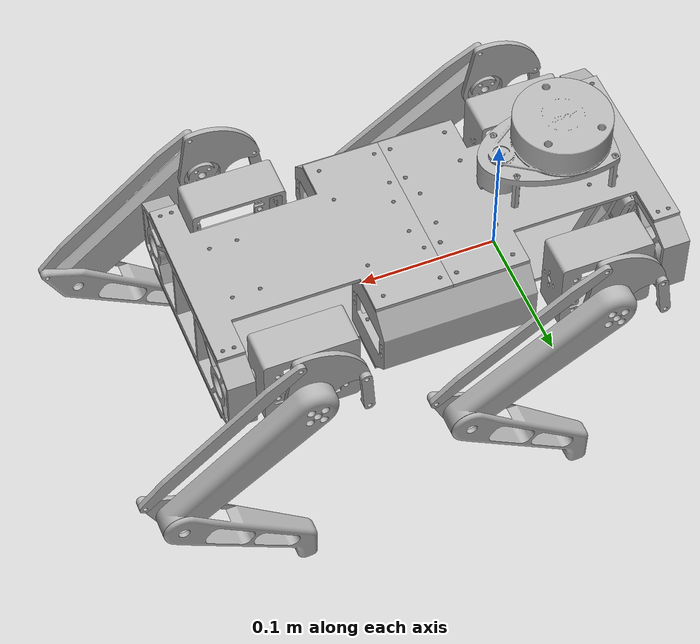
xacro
<?xml version="1.0" ?>
<robot name="Argos" xmlns:xacro="http://www.ros.org/wiki/xacro">

<xacro:include filename="$(find Argos_description)/urdf/materials.xacro" />
<xacro:include filename="$(find Argos_description)/urdf/Argos.trans" />
<xacro:include filename="$(find Argos_description)/urdf/Argos.gazebo" />
<link name="base_link">
  <inertial>
    <origin xyz="-0.022118466334973337 -0.009183143711477892 -0.01761714704800224" rpy="0 0 0"/>
    <mass value="0.41722982746680565"/>
    <inertia ixx="0.000465" iyy="0.001147" izz="0.001612" ixy="0.0" iyz="0.0" ixz="-0.0"/>
  </inertial>
  <visual>
    <origin xyz="0 0 0" rpy="0 0 0"/>
    <geometry>
      <mesh filename="package://Argos_description/meshes/base_link.stl" scale="0.001 0.001 0.001"/>
    </geometry>
    <material name="silver"/>
  </visual>
  <collision>
    <origin xyz="0 0 0" rpy="0 0 0"/>
    <geometry>
      <mesh filename="package://Argos_description/meshes/base_link.stl" scale="0.001 0.001 0.001"/>
    </geometry>
  </collision>
</link>

<link name="chassis_side_left_1">
  <inertial>
    <origin xyz="0.04749985628852587 -0.028528711386581106 0.030499852951997856" rpy="0 0 0"/>
    <mass value="0.5418487678584163"/>
    <inertia ixx="0.000472" iyy="0.001048" izz="0.000931" ixy="-0.0" iyz="0.0" ixz="0.0"/>
  </inertial>
  <visual>
    <origin xyz="-0.009817 0.040183 0.016117" rpy="0 0 0"/>
    <geometry>
      <mesh filename="package://Argos_description/meshes/chassis_side_left_1.stl" scale="0.001 0.001 0.001"/>
    </geometry>
    <material name="silver"/>
  </visual>
  <collision>
    <origin xyz="-0.009817 0.040183 0.016117" rpy="0 0 0"/>
    <geometry>
      <mesh filename="package://Argos_description/meshes/chassis_side_left_1.stl" scale="0.001 0.001 0.001"/>
    </geometry>
  </collision>
</link>

<link name="chassis_front_1">
  <inertial>
    <origin xyz="-0.004192204191852261 0.06199985628867903 0.03075956610836024" rpy="0 0 0"/>
    <mass value="0.4930747270961484"/>
    <inertia ixx="0.001806" iyy="0.000269" izz="0.00157" ixy="-0.0" iyz="0.0" ixz="-0.0"/>
  </inertial>
  <visual>
    <origin xyz="0.098183 0.071183 0.016117" rpy="0 0 0"/>
    <geometry>
      <mesh filename="package://Argos_description/meshes/chassis_front_1.stl" scale="0.001 0.001 0.001"/>
    </geometry>
    <material name="silver"/>
  </visual>
  <collision>
    <origin xyz="0.098183 0.071183 0.016117" rpy="0 0 0"/>
    <geometry>
      <mesh filename="package://Argos_description/meshes/chassis_front_1.stl" scale="0.001 0.001 0.001"/>
    </geometry>
  </collision>
</link>

<link name="chassis_cam_mount_1">
  <inertial>
    <origin xyz="0.011646354435480802 -1.437114716049126e-07 0.021129531182059128" rpy="0 0 0"/>
    <mass value="0.03474382066439181"/>
    <inertia ixx="1e-05" iyy="1.3e-05" izz="4e-06" ixy="0.0" iyz="-0.0" ixz="2e-06"/>
  </inertial>
  <visual>
    <origin xyz="0.084683 0.031683 0.016117" rpy="0 0 0"/>
    <geometry>
      <mesh filename="package://Argos_description/meshes/chassis_cam_mount_1.stl" scale="0.001 0.001 0.001"/>
    </geometry>
    <material name="silver"/>
  </visual>
  <collision>
    <origin xyz="0.084683 0.031683 0.016117" rpy="0 0 0"/>
    <geometry>
      <mesh filename="package://Argos_description/meshes/chassis_cam_mount_1.stl" scale="0.001 0.001 0.001"/>
    </geometry>
  </collision>
</link>

<link name="chassis_cam_mount_2">
  <inertial>
    <origin xyz="0.011646354435480955 -1.437114715910348e-07 0.021129531182059104" rpy="0 0 0"/>
    <mass value="0.03474382066439181"/>
    <inertia ixx="1e-05" iyy="1.3e-05" izz="4e-06" ixy="0.0" iyz="-0.0" ixz="2e-06"/>
  </inertial>
  <visual>
    <origin xyz="0.084683 -0.013317 0.016117" rpy="0 0 0"/>
    <geometry>
      <mesh filename="package://Argos_description/meshes/chassis_cam_mount_2.stl" scale="0.001 0.001 0.001"/>
    </geometry>
    <material name="silver"/>
  </visual>
  <collision>
    <origin xyz="0.084683 -0.013317 0.016117" rpy="0 0 0"/>
    <geometry>
      <mesh filename="package://Argos_description/meshes/chassis_cam_mount_2.stl" scale="0.001 0.001 0.001"/>
    </geometry>
  </collision>
</link>

<link name="chassis_bottom_1">
  <inertial>
    <origin xyz="0.07943517891202628 -1.4371146442836158e-07 -1.4704800211165492e-07" rpy="0 0 0"/>
    <mass value="0.41722982746680565"/>
    <inertia ixx="0.000465" iyy="0.001147" izz="0.001612" ixy="0.0" iyz="0.0" ixz="-0.0"/>
  </inertial>
  <visual>
    <origin xyz="-0.057317 0.009183 0.017617" rpy="0 0 0"/>
    <geometry>
      <mesh filename="package://Argos_description/meshes/chassis_bottom_1.stl" scale="0.001 0.001 0.001"/>
    </geometry>
    <material name="silver"/>
  </visual>
  <collision>
    <origin xyz="-0.057317 0.009183 0.017617" rpy="0 0 0"/>
    <geometry>
      <mesh filename="package://Argos_description/meshes/chassis_bottom_1.stl" scale="0.001 0.001 0.001"/>
    </geometry>
  </collision>
</link>

<link name="chassis_side_right__1__1">
  <inertial>
    <origin xyz="0.04749985628852315 0.028528423963627692 0.030499852951997697" rpy="0 0 0"/>
    <mass value="0.5418487678584163"/>
    <inertia ixx="0.000472" iyy="0.001048" izz="0.000931" ixy="-0.0" iyz="-0.0" ixz="-0.0"/>
  </inertial>
  <visual>
    <origin xyz="-0.009817 -0.021817 0.016117" rpy="0 0 0"/>
    <geometry>
      <mesh filename="package://Argos_description/meshes/chassis_side_right__1__1.stl" scale="0.001 0.001 0.001"/>
    </geometry>
    <material name="silver"/>
  </visual>
  <collision>
    <origin xyz="-0.009817 -0.021817 0.016117" rpy="0 0 0"/>
    <geometry>
      <mesh filename="package://Argos_description/meshes/chassis_side_right__1__1.stl" scale="0.001 0.001 0.001"/>
    </geometry>
  </collision>
</link>

<link name="camera_link_1">
  <inertial>
    <origin xyz="-0.010946509607845059 0.02109173183975526 -0.004009299264399694" rpy="0 0 0"/>
    <mass value="0.07200111279051585"/>
    <inertia ixx="4.6e-05" iyy="7e-06" izz="4.7e-05" ixy="0.0" iyz="0.0" ixz="-0.0"/>
  </inertial>
  <visual>
    <origin xyz="0.084683 0.031683 -0.022883" rpy="0 0 0"/>
    <geometry>
      <mesh filename="package://Argos_description/meshes/camera_link_1.stl" scale="0.001 0.001 0.001"/>
    </geometry>
    <material name="silver"/>
  </visual>
  <collision>
    <origin xyz="0.084683 0.031683 -0.022883" rpy="0 0 0"/>
    <geometry>
      <mesh filename="package://Argos_description/meshes/camera_link_1.stl" scale="0.001 0.001 0.001"/>
    </geometry>
  </collision>
</link>

<link name="chassis_back_1">
  <inertial>
    <origin xyz="-0.003824523493727916 -0.06200014371160491 0.030737334816992173" rpy="0 0 0"/>
    <mass value="0.5392327270961488"/>
    <inertia ixx="0.001836" iyy="0.00028" izz="0.001593" ixy="-0.0" iyz="-0.0" ixz="0.0"/>
  </inertial>
  <visual>
    <origin xyz="-0.220817 -0.052817 0.016117" rpy="0 0 0"/>
    <geometry>
      <mesh filename="package://Argos_description/meshes/chassis_back_1.stl" scale="0.001 0.001 0.001"/>
    </geometry>
    <material name="silver"/>
  </visual>
  <collision>
    <origin xyz="-0.220817 -0.052817 0.016117" rpy="0 0 0"/>
    <geometry>
      <mesh filename="package://Argos_description/meshes/chassis_back_1.stl" scale="0.001 0.001 0.001"/>
    </geometry>
  </collision>
</link>

<link name="chassis_top_back_1">
  <inertial>
    <origin xyz="-0.08406482108797664 -0.0620001437114677 0.0014998529519979278" rpy="0 0 0"/>
    <mass value="0.41722982746680565"/>
    <inertia ixx="0.000465" iyy="0.001147" izz="0.001612" ixy="0.0" iyz="0.0" ixz="-0.0"/>
  </inertial>
  <visual>
    <origin xyz="-0.220817 -0.052817 -0.044883" rpy="0 0 0"/>
    <geometry>
      <mesh filename="package://Argos_description/meshes/chassis_top_back_1.stl" scale="0.001 0.001 0.001"/>
    </geometry>
    <material name="silver"/>
  </visual>
  <collision>
    <origin xyz="-0.220817 -0.052817 -0.044883" rpy="0 0 0"/>
    <geometry>
      <mesh filename="package://Argos_description/meshes/chassis_top_back_1.stl" scale="0.001 0.001 0.001"/>
    </geometry>
  </collision>
</link>

<link name="chassis_top_front_1">
  <inertial>
    <origin xyz="0.08410298001571184 -0.061989721998729076 0.0014998529519977405" rpy="0 0 0"/>
    <mass value="0.4159347286719098"/>
    <inertia ixx="0.000464" iyy="0.001144" izz="0.001607" ixy="0.0" iyz="0.0" ixz="0.0"/>
  </inertial>
  <visual>
    <origin xyz="0.106183 -0.052817 -0.044883" rpy="0 0 0"/>
    <geometry>
      <mesh filename="package://Argos_description/meshes/chassis_top_front_1.stl" scale="0.001 0.001 0.001"/>
    </geometry>
    <material name="silver"/>
  </visual>
  <collision>
    <origin xyz="0.106183 -0.052817 -0.044883" rpy="0 0 0"/>
    <geometry>
      <mesh filename="package://Argos_description/meshes/chassis_top_front_1.stl" scale="0.001 0.001 0.001"/>
    </geometry>
  </collision>
</link>

<link name="lidar_link_1">
  <inertial>
    <origin xyz="0.033784169392077075 -0.027505085866451538 0.03503813199409616" rpy="0 0 0"/>
    <mass value="1.122500385833242"/>
    <inertia ixx="0.000458" iyy="0.000732" izz="0.000909" ixy="-3e-06" iyz="-6e-06" ixz="0.000104"/>
  </inertial>
  <visual>
    <origin xyz="0.079183 -0.018817 -0.047883" rpy="0 0 0"/>
    <geometry>
      <mesh filename="package://Argos_description/meshes/lidar_link_1.stl" scale="0.001 0.001 0.001"/>
    </geometry>
    <material name="silver"/>
  </visual>
  <collision>
    <origin xyz="0.079183 -0.018817 -0.047883" rpy="0 0 0"/>
    <geometry>
      <mesh filename="package://Argos_description/meshes/lidar_link_1.stl" scale="0.001 0.001 0.001"/>
    </geometry>
  </collision>
</link>

<link name="FL_coxa_link_1">
  <inertial>
    <origin xyz="-0.03536618985332857 -0.00686411101953549 -1.470480022573717e-07" rpy="0 0 0"/>
    <mass value="0.22169336139879325"/>
    <inertia ixx="0.000138" iyy="0.000268" izz="0.000171" ixy="1e-06" iyz="0.0" ixz="0.0"/>
  </inertial>
  <visual>
    <origin xyz="0.016983 0.073583 -0.014583" rpy="0 0 0"/>
    <geometry>
      <mesh filename="package://Argos_description/meshes/FL_coxa_link_1.stl" scale="0.001 0.001 0.001"/>
    </geometry>
    <material name="silver"/>
  </visual>
  <collision>
    <origin xyz="0.016983 0.073583 -0.014583" rpy="0 0 0"/>
    <geometry>
      <mesh filename="package://Argos_description/meshes/FL_coxa_link_1.stl" scale="0.001 0.001 0.001"/>
    </geometry>
  </collision>
</link>

<link name="FL_femur_link_1">
  <inertial>
    <origin xyz="0.04496963743627094 -0.010981700845071177 -0.029725960847840703" rpy="0 0 0"/>
    <mass value="0.48563687689626245"/>
    <inertia ixx="0.000276" iyy="0.000829" izz="0.000571" ixy="5e-06" iyz="-3e-06" ixz="0.000345"/>
  </inertial>
  <visual>
    <origin xyz="0.041083 0.111383 -0.027133" rpy="0 0 0"/>
    <geometry>
      <mesh filename="package://Argos_description/meshes/FL_femur_link_1.stl" scale="0.001 0.001 0.001"/>
    </geometry>
    <material name="silver"/>
  </visual>
  <collision>
    <origin xyz="0.041083 0.111383 -0.027133" rpy="0 0 0"/>
    <geometry>
      <mesh filename="package://Argos_description/meshes/FL_femur_link_1.stl" scale="0.001 0.001 0.001"/>
    </geometry>
  </collision>
</link>

<link name="FL_tibia_link_1">
  <inertial>
    <origin xyz="-0.044741386329283775 -0.01123839952367807 -0.03823646771356843" rpy="0 0 0"/>
    <mass value="0.23251412340601418"/>
    <inertia ixx="0.000211" iyy="0.000474" izz="0.000282" ixy="-1e-05" iyz="-9e-06" ixz="-0.000219"/>
  </inertial>
  <visual>
    <origin xyz="-0.064863 0.110742 0.042899" rpy="0 0 0"/>
    <geometry>
      <mesh filename="package://Argos_description/meshes/FL_tibia_link_1.stl" scale="0.001 0.001 0.001"/>
    </geometry>
    <material name="silver"/>
  </visual>
  <collision>
    <origin xyz="-0.064863 0.110742 0.042899" rpy="0 0 0"/>
    <geometry>
      <mesh filename="package://Argos_description/meshes/FL_tibia_link_1.stl" scale="0.001 0.001 0.001"/>
    </geometry>
  </collision>
</link>

<link name="FR_coxa_link_1">
  <inertial>
    <origin xyz="-0.03536618985333116 0.006863823596581671 -1.4704800227645365e-07" rpy="0 0 0"/>
    <mass value="0.22169336139879325"/>
    <inertia ixx="0.000138" iyy="0.000268" izz="0.000171" ixy="-1e-06" iyz="0.0" ixz="-0.0"/>
  </inertial>
  <visual>
    <origin xyz="0.016983 -0.055217 -0.014583" rpy="0 0 0"/>
    <geometry>
      <mesh filename="package://Argos_description/meshes/FR_coxa_link_1.stl" scale="0.001 0.001 0.001"/>
    </geometry>
    <material name="silver"/>
  </visual>
  <collision>
    <origin xyz="0.016983 -0.055217 -0.014583" rpy="0 0 0"/>
    <geometry>
      <mesh filename="package://Argos_description/meshes/FR_coxa_link_1.stl" scale="0.001 0.001 0.001"/>
    </geometry>
  </collision>
</link>

<link name="FR_femur_link_1">
  <inertial>
    <origin xyz="0.044963811698711595 0.01098141342211656 -0.029734772258510584" rpy="0 0 0"/>
    <mass value="0.48563687689626245"/>
    <inertia ixx="0.000276" iyy="0.000829" izz="0.00057" ixy="-5e-06" iyz="3e-06" ixz="0.000346"/>
  </inertial>
  <visual>
    <origin xyz="0.041083 -0.093017 -0.027133" rpy="0 0 0"/>
    <geometry>
      <mesh filename="package://Argos_description/meshes/FR_femur_link_1.stl" scale="0.001 0.001 0.001"/>
    </geometry>
    <material name="silver"/>
  </visual>
  <collision>
    <origin xyz="0.041083 -0.093017 -0.027133" rpy="0 0 0"/>
    <geometry>
      <mesh filename="package://Argos_description/meshes/FR_femur_link_1.stl" scale="0.001 0.001 0.001"/>
    </geometry>
  </collision>
</link>

<link name="FR_tibia_link_1">
  <inertial>
    <origin xyz="-0.044998890719330074 0.011238110693268064 -0.03793258549694835" rpy="0 0 0"/>
    <mass value="0.23251435769920883"/>
    <inertia ixx="0.000208" iyy="0.000474" izz="0.000285" ixy="1e-05" iyz="8e-06" ixz="-0.000219"/>
  </inertial>
  <visual>
    <origin xyz="-0.064849 -0.092376 0.04292" rpy="0 0 0"/>
    <geometry>
      <mesh filename="package://Argos_description/meshes/FR_tibia_link_1.stl" scale="0.001 0.001 0.001"/>
    </geometry>
    <material name="silver"/>
  </visual>
  <collision>
    <origin xyz="-0.064849 -0.092376 0.04292" rpy="0 0 0"/>
    <geometry>
      <mesh filename="package://Argos_description/meshes/FR_tibia_link_1.stl" scale="0.001 0.001 0.001"/>
    </geometry>
  </collision>
</link>

<link name="RR_coxa_link_1">
  <inertial>
    <origin xyz="0.03536590243037757 0.00686382359658224 -1.4704800218971747e-07" rpy="0 0 0"/>
    <mass value="0.22169336139879325"/>
    <inertia ixx="0.000138" iyy="0.000268" izz="0.000171" ixy="1e-06" iyz="-0.0" ixz="-0.0"/>
  </inertial>
  <visual>
    <origin xyz="-0.131617 -0.055217 -0.014583" rpy="0 0 0"/>
    <geometry>
      <mesh filename="package://Argos_description/meshes/RR_coxa_link_1.stl" scale="0.001 0.001 0.001"/>
    </geometry>
    <material name="silver"/>
  </visual>
  <collision>
    <origin xyz="-0.131617 -0.055217 -0.014583" rpy="0 0 0"/>
    <geometry>
      <mesh filename="package://Argos_description/meshes/RR_coxa_link_1.stl" scale="0.001 0.001 0.001"/>
    </geometry>
  </collision>
</link>

<link name="RR_femur_link_1">
  <inertial>
    <origin xyz="0.04198059623840816 0.010981413422117961 -0.033816159465183036" rpy="0 0 0"/>
    <mass value="0.48563687689626245"/>
    <inertia ixx="0.000344" iyy="0.000829" izz="0.000503" ixy="-4e-06" iyz="4e-06" ixz="0.000367"/>
  </inertial>
  <visual>
    <origin xyz="-0.176517 -0.093017 -0.027133" rpy="0 0 0"/>
    <geometry>
      <mesh filename="package://Argos_description/meshes/RR_femur_link_1.stl" scale="0.001 0.001 0.001"/>
    </geometry>
    <material name="silver"/>
  </visual>
  <collision>
    <origin xyz="-0.176517 -0.093017 -0.027133" rpy="0 0 0"/>
    <geometry>
      <mesh filename="package://Argos_description/meshes/RR_femur_link_1.stl" scale="0.001 0.001 0.001"/>
    </geometry>
  </collision>
</link>

<link name="RR_tibia_link_1">
  <inertial>
    <origin xyz="-0.04591594144318489 0.011238110693267231 -0.03681801756070503" rpy="0 0 0"/>
    <mass value="0.23251435769920883"/>
    <inertia ixx="0.000198" iyy="0.000474" izz="0.000296" ixy="1e-05" iyz="8e-06" ixz="-0.000217"/>
  </inertial>
  <visual>
    <origin xyz="-0.275421 -0.092376 0.052535" rpy="0 0 0"/>
    <geometry>
      <mesh filename="package://Argos_description/meshes/RR_tibia_link_1.stl" scale="0.001 0.001 0.001"/>
    </geometry>
    <material name="silver"/>
  </visual>
  <collision>
    <origin xyz="-0.275421 -0.092376 0.052535" rpy="0 0 0"/>
    <geometry>
      <mesh filename="package://Argos_description/meshes/RR_tibia_link_1.stl" scale="0.001 0.001 0.001"/>
    </geometry>
  </collision>
</link>

<link name="RL_coxa_link_1">
  <inertial>
    <origin xyz="0.0353659024303799 -0.006864111019535199 -1.470480019624687e-07" rpy="0 0 0"/>
    <mass value="0.22169336139879325"/>
    <inertia ixx="0.000138" iyy="0.000268" izz="0.000171" ixy="-1e-06" iyz="-0.0" ixz="0.0"/>
  </inertial>
  <visual>
    <origin xyz="-0.131617 0.073583 -0.014583" rpy="0 0 0"/>
    <geometry>
      <mesh filename="package://Argos_description/meshes/RL_coxa_link_1.stl" scale="0.001 0.001 0.001"/>
    </geometry>
    <material name="silver"/>
  </visual>
  <collision>
    <origin xyz="-0.131617 0.073583 -0.014583" rpy="0 0 0"/>
    <geometry>
      <mesh filename="package://Argos_description/meshes/RL_coxa_link_1.stl" scale="0.001 0.001 0.001"/>
    </geometry>
  </collision>
</link>

<link name="RL_femur_link_1">
  <inertial>
    <origin xyz="0.04203048632636108 -0.010981700845069817 -0.033754129941305604" rpy="0 0 0"/>
    <mass value="0.48563687689626245"/>
    <inertia ixx="0.000342" iyy="0.000829" izz="0.000505" ixy="4e-06" iyz="-4e-06" ixz="0.000367"/>
  </inertial>
  <visual>
    <origin xyz="-0.176517 0.111383 -0.027133" rpy="0 0 0"/>
    <geometry>
      <mesh filename="package://Argos_description/meshes/RL_femur_link_1.stl" scale="0.001 0.001 0.001"/>
    </geometry>
    <material name="silver"/>
  </visual>
  <collision>
    <origin xyz="-0.176517 0.111383 -0.027133" rpy="0 0 0"/>
    <geometry>
      <mesh filename="package://Argos_description/meshes/RL_femur_link_1.stl" scale="0.001 0.001 0.001"/>
    </geometry>
  </collision>
</link>

<link name="RL_tibia_link_1">
  <inertial>
    <origin xyz="-0.046239433810130265 -0.011238399523676043 -0.03641002518010834" rpy="0 0 0"/>
    <mass value="0.23251412340601418"/>
    <inertia ixx="0.000194" iyy="0.000474" izz="0.0003" ixy="-1e-05" iyz="-8e-06" ixz="-0.000216"/>
  </inertial>
  <visual>
    <origin xyz="-0.275538 0.110742 0.052389" rpy="0 0 0"/>
    <geometry>
      <mesh filename="package://Argos_description/meshes/RL_tibia_link_1.stl" scale="0.001 0.001 0.001"/>
    </geometry>
    <material name="silver"/>
  </visual>
  <collision>
    <origin xyz="-0.275538 0.110742 0.052389" rpy="0 0 0"/>
    <geometry>
      <mesh filename="package://Argos_description/meshes/RL_tibia_link_1.stl" scale="0.001 0.001 0.001"/>
    </geometry>
  </collision>
</link>

<link name="FL_shoulder_link_1">
  <inertial>
    <origin xyz="-0.01184692882487038 -0.002000143711475902 0.018802853465674094" rpy="0 0 0"/>
    <mass value="0.05943671002780686"/>
    <inertia ixx="1.1e-05" iyy="2.5e-05" izz="1.4e-05" ixy="0.0" iyz="-0.0" ixz="-1e-06"/>
  </inertial>
  <visual>
    <origin xyz="0.041083 0.111383 -0.027133" rpy="0 0 0"/>
    <geometry>
      <mesh filename="package://Argos_description/meshes/FL_shoulder_link_1.stl" scale="0.001 0.001 0.001"/>
    </geometry>
    <material name="silver"/>
  </visual>
  <collision>
    <origin xyz="0.041083 0.111383 -0.027133" rpy="0 0 0"/>
    <geometry>
      <mesh filename="package://Argos_description/meshes/FL_shoulder_link_1.stl" scale="0.001 0.001 0.001"/>
    </geometry>
  </collision>
</link>

<link name="FL_30mm_linkage_1">
  <inertial>
    <origin xyz="0.001964080899993101 -0.0016718055928684195 0.013408336541967388" rpy="0 0 0"/>
    <mass value="0.009494049300548958"/>
    <inertia ixx="1e-06" iyy="1e-06" izz="0.0" ixy="0.0" iyz="0.0" ixz="-0.0"/>
  </inertial>
  <visual>
    <origin xyz="0.085083 0.115383 -0.002716" rpy="0 0 0"/>
    <geometry>
      <mesh filename="package://Argos_description/meshes/FL_30mm_linkage_1.stl" scale="0.001 0.001 0.001"/>
    </geometry>
    <material name="silver"/>
  </visual>
  <collision>
    <origin xyz="0.085083 0.115383 -0.002716" rpy="0 0 0"/>
    <geometry>
      <mesh filename="package://Argos_description/meshes/FL_30mm_linkage_1.stl" scale="0.001 0.001 0.001"/>
    </geometry>
  </collision>
</link>

<link name="FL_150mm_linkage_1">
  <inertial>
    <origin xyz="0.0614644618418151 -0.0020001437114769427 -0.04299727249464855" rpy="0 0 0"/>
    <mass value="0.05051859527408095"/>
    <inertia ixx="3.2e-05" iyy="9.3e-05" izz="6.1e-05" ixy="0.0" iyz="-0.0" ixz="4.4e-05"/>
  </inertial>
  <visual>
    <origin xyz="0.035817 0.115383 -0.066785" rpy="0 0 0"/>
    <geometry>
      <mesh filename="package://Argos_description/meshes/FL_150mm_linkage_1.stl" scale="0.001 0.001 0.001"/>
    </geometry>
    <material name="silver"/>
  </visual>
  <collision>
    <origin xyz="0.035817 0.115383 -0.066785" rpy="0 0 0"/>
    <geometry>
      <mesh filename="package://Argos_description/meshes/FL_150mm_linkage_1.stl" scale="0.001 0.001 0.001"/>
    </geometry>
  </collision>
</link>

<link name="FR_shoulder_link_1">
  <inertial>
    <origin xyz="-0.011738885580321039 -0.002000143711478289 0.018870493777812993" rpy="0 0 0"/>
    <mass value="0.05943671002780686"/>
    <inertia ixx="1.1e-05" iyy="2.5e-05" izz="1.4e-05" ixy="-0.0" iyz="-0.0" ixz="-1e-06"/>
  </inertial>
  <visual>
    <origin xyz="0.041083 -0.097017 -0.027133" rpy="0 0 0"/>
    <geometry>
      <mesh filename="package://Argos_description/meshes/FR_shoulder_link_1.stl" scale="0.001 0.001 0.001"/>
    </geometry>
    <material name="silver"/>
  </visual>
  <collision>
    <origin xyz="0.041083 -0.097017 -0.027133" rpy="0 0 0"/>
    <geometry>
      <mesh filename="package://Argos_description/meshes/FR_shoulder_link_1.stl" scale="0.001 0.001 0.001"/>
    </geometry>
  </collision>
</link>

<link name="FR_30mm_linkage_1">
  <inertial>
    <origin xyz="0.001977072656226417 0.001671518169914954 0.013406012857052712" rpy="0 0 0"/>
    <mass value="0.009494049300548958"/>
    <inertia ixx="1e-06" iyy="1e-06" izz="0.0" ixy="-0.0" iyz="-0.0" ixz="-0.0"/>
  </inertial>
  <visual>
    <origin xyz="0.085081 -0.097017 -0.002948" rpy="0 0 0"/>
    <geometry>
      <mesh filename="package://Argos_description/meshes/FR_30mm_linkage_1.stl" scale="0.001 0.001 0.001"/>
    </geometry>
    <material name="silver"/>
  </visual>
  <collision>
    <origin xyz="0.085081 -0.097017 -0.002948" rpy="0 0 0"/>
    <geometry>
      <mesh filename="package://Argos_description/meshes/FR_30mm_linkage_1.stl" scale="0.001 0.001 0.001"/>
    </geometry>
  </collision>
</link>

<link name="FR_150mm_linkage_1">
  <inertial>
    <origin xyz="0.061417389296541065 -0.0020001437114776505 -0.0430634077717404" rpy="0 0 0"/>
    <mass value="0.05051859527408095"/>
    <inertia ixx="3.2e-05" iyy="9.3e-05" izz="6.1e-05" ixy="-0.0" iyz="0.0" ixz="4.4e-05"/>
  </inertial>
  <visual>
    <origin xyz="0.035589 -0.101017 -0.066754" rpy="0 0 0"/>
    <geometry>
      <mesh filename="package://Argos_description/meshes/FR_150mm_linkage_1.stl" scale="0.001 0.001 0.001"/>
    </geometry>
    <material name="silver"/>
  </visual>
  <collision>
    <origin xyz="0.035589 -0.101017 -0.066754" rpy="0 0 0"/>
    <geometry>
      <mesh filename="package://Argos_description/meshes/FR_150mm_linkage_1.stl" scale="0.001 0.001 0.001"/>
    </geometry>
  </collision>
</link>

<link name="RL_shoulder_link_1">
  <inertial>
    <origin xyz="-0.010936691665925535 -0.00200014371147568 0.01934645639240241" rpy="0 0 0"/>
    <mass value="0.05943671002780686"/>
    <inertia ixx="1.1e-05" iyy="2.5e-05" izz="1.4e-05" ixy="0.0" iyz="0.0" ixz="-1e-06"/>
  </inertial>
  <visual>
    <origin xyz="-0.176517 0.111383 -0.027133" rpy="0 0 0"/>
    <geometry>
      <mesh filename="package://Argos_description/meshes/RL_shoulder_link_1.stl" scale="0.001 0.001 0.001"/>
    </geometry>
    <material name="silver"/>
  </visual>
  <collision>
    <origin xyz="-0.176517 0.111383 -0.027133" rpy="0 0 0"/>
    <geometry>
      <mesh filename="package://Argos_description/meshes/RL_shoulder_link_1.stl" scale="0.001 0.001 0.001"/>
    </geometry>
  </collision>
</link>

<link name="RL_30mm_linkage_1">
  <inertial>
    <origin xyz="0.002060616625059658 -0.0016718055928690856 0.013393955365098324" rpy="0 0 0"/>
    <mass value="0.009494049300548958"/>
    <inertia ixx="1e-06" iyy="1e-06" izz="0.0" ixy="0.0" iyz="0.0" ixz="-0.0"/>
  </inertial>
  <visual>
    <origin xyz="-0.1326 0.115383 -0.004633" rpy="0 0 0"/>
    <geometry>
      <mesh filename="package://Argos_description/meshes/RL_30mm_linkage_1.stl" scale="0.001 0.001 0.001"/>
    </geometry>
    <material name="silver"/>
  </visual>
  <collision>
    <origin xyz="-0.1326 0.115383 -0.004633" rpy="0 0 0"/>
    <geometry>
      <mesh filename="package://Argos_description/meshes/RL_30mm_linkage_1.stl" scale="0.001 0.001 0.001"/>
    </geometry>
  </collision>
</link>

<link name="RL_150mm_linkage_1">
  <inertial>
    <origin xyz="0.05757028904921216 -0.0020001437114751247 -0.04808586730500919" rpy="0 0 0"/>
    <mass value="0.05051859527408095"/>
    <inertia ixx="4e-05" iyy="9.3e-05" izz="5.3e-05" ixy="-0.0" iyz="0.0" ixz="4.6e-05"/>
  </inertial>
  <visual>
    <origin xyz="-0.183668 0.115383 -0.066488" rpy="0 0 0"/>
    <geometry>
      <mesh filename="package://Argos_description/meshes/RL_150mm_linkage_1.stl" scale="0.001 0.001 0.001"/>
    </geometry>
    <material name="silver"/>
  </visual>
  <collision>
    <origin xyz="-0.183668 0.115383 -0.066488" rpy="0 0 0"/>
    <geometry>
      <mesh filename="package://Argos_description/meshes/RL_150mm_linkage_1.stl" scale="0.001 0.001 0.001"/>
    </geometry>
  </collision>
</link>

<link name="RR_shoulder_link_1">
  <inertial>
    <origin xyz="-0.011081512942198002 -0.0020001437114764847 0.01926387127146353" rpy="0 0 0"/>
    <mass value="0.05943671002780686"/>
    <inertia ixx="1.1e-05" iyy="2.5e-05" izz="1.4e-05" ixy="-0.0" iyz="0.0" ixz="-1e-06"/>
  </inertial>
  <visual>
    <origin xyz="-0.176517 -0.097017 -0.027133" rpy="0 0 0"/>
    <geometry>
      <mesh filename="package://Argos_description/meshes/RR_shoulder_link_1.stl" scale="0.001 0.001 0.001"/>
    </geometry>
    <material name="silver"/>
  </visual>
  <collision>
    <origin xyz="-0.176517 -0.097017 -0.027133" rpy="0 0 0"/>
    <geometry>
      <mesh filename="package://Argos_description/meshes/RR_shoulder_link_1.stl" scale="0.001 0.001 0.001"/>
    </geometry>
  </collision>
</link>

<link name="RR_30mm_linkage_1">
  <inertial>
    <origin xyz="0.0009260696504191646 0.0016715181699155646 0.013519750706526175" rpy="0 0 0"/>
    <mass value="0.009494049300548958"/>
    <inertia ixx="1e-06" iyy="1e-06" izz="0.0" ixy="-0.0" iyz="-0.0" ixz="-0.0"/>
  </inertial>
  <visual>
    <origin xyz="-0.135059 -0.097017 -0.004059" rpy="0 0 0"/>
    <geometry>
      <mesh filename="package://Argos_description/meshes/RR_30mm_linkage_1.stl" scale="0.001 0.001 0.001"/>
    </geometry>
    <material name="silver"/>
  </visual>
  <collision>
    <origin xyz="-0.135059 -0.097017 -0.004059" rpy="0 0 0"/>
    <geometry>
      <mesh filename="package://Argos_description/meshes/RR_30mm_linkage_1.stl" scale="0.001 0.001 0.001"/>
    </geometry>
  </collision>
</link>

<link name="RR_150mm_linkage_1">
  <inertial>
    <origin xyz="0.05756641671503243 -0.002000143711476457 -0.04809045177879494" rpy="0 0 0"/>
    <mass value="0.05051859527408095"/>
    <inertia ixx="4e-05" iyy="9.3e-05" izz="5.3e-05" ixy="0.0" iyz="0.0" ixz="4.6e-05"/>
  </inertial>
  <visual>
    <origin xyz="-0.183373 -0.101017 -0.066541" rpy="0 0 0"/>
    <geometry>
      <mesh filename="package://Argos_description/meshes/RR_150mm_linkage_1.stl" scale="0.001 0.001 0.001"/>
    </geometry>
    <material name="silver"/>
  </visual>
  <collision>
    <origin xyz="-0.183373 -0.101017 -0.066541" rpy="0 0 0"/>
    <geometry>
      <mesh filename="package://Argos_description/meshes/RR_150mm_linkage_1.stl" scale="0.001 0.001 0.001"/>
    </geometry>
  </collision>
</link>

<joint name="chassis_side_left_joint" type="fixed">
  <origin xyz="0.009817 -0.040183 -0.016117" rpy="0 0 0"/>
  <parent link="base_link"/>
  <child link="chassis_side_left_1"/>
</joint>

<joint name="chassis_front_joint" type="fixed">
  <origin xyz="-0.098183 -0.071183 -0.016117" rpy="0 0 0"/>
  <parent link="base_link"/>
  <child link="chassis_front_1"/>
</joint>

<joint name="chassis_cam_mount_1" type="fixed">
  <origin xyz="-0.084683 -0.031683 -0.016117" rpy="0 0 0"/>
  <parent link="base_link"/>
  <child link="chassis_cam_mount_1"/>
</joint>

<joint name="chassis_cam_mount_2" type="fixed">
  <origin xyz="-0.084683 0.013317 -0.016117" rpy="0 0 0"/>
  <parent link="base_link"/>
  <child link="chassis_cam_mount_2"/>
</joint>

<joint name="chassis_bottom_joint" type="fixed">
  <origin xyz="0.057317 -0.009183 -0.017617" rpy="0 0 0"/>
  <parent link="base_link"/>
  <child link="chassis_bottom_1"/>
</joint>

<joint name="chassis_side_right_joint" type="fixed">
  <origin xyz="0.009817 0.021817 -0.016117" rpy="0 0 0"/>
  <parent link="base_link"/>
  <child link="chassis_side_right__1__1"/>
</joint>

<joint name="camera_joint" type="fixed">
  <origin xyz="0.0 0.0 0.039" rpy="0 0 0"/>
  <parent link="chassis_cam_mount_1"/>
  <child link="camera_link_1"/>
</joint>

<joint name="chassis_back_joint" type="fixed">
  <origin xyz="0.1635 0.062 0.0015" rpy="0 0 0"/>
  <parent link="chassis_bottom_1"/>
  <child link="chassis_back_1"/>
</joint>

<joint name="chassis_top_back_joint" type="fixed">
  <origin xyz="0.0 0.0 0.061" rpy="0 0 0"/>
  <parent link="chassis_back_1"/>
  <child link="chassis_top_back_1"/>
</joint>

<joint name="chassis_top_front_joint" type="fixed">
  <origin xyz="-0.008 0.124 0.061" rpy="0 0 0"/>
  <parent link="chassis_front_1"/>
  <child link="chassis_top_front_1"/>
</joint>

<joint name="lidar_joint" type="fixed">
  <origin xyz="0.027 -0.034 0.003" rpy="0 0 0"/>
  <parent link="chassis_top_front_1"/>
  <child link="lidar_link_1"/>
</joint>

<joint name="FL_coxa_joint" type="revolute">
  <origin xyz="-0.016983 -0.073583 0.014583" rpy="0 0 0"/>
  <parent link="base_link"/>
  <child link="FL_coxa_link_1"/>
  <axis xyz="1.0 0.0 0.0"/>
  <limit lower="-0.524" upper="0.524" effort="4.41" velocity="6.28"/>
</joint>

<joint name="FL_femur_joint" type="revolute">
  <origin xyz="-0.024100 -0.037800 0.012550" rpy="0 0 0"/>
  <parent link="FL_coxa_link_1"/>
  <child link="FL_femur_link_1"/>
  <axis xyz="0.0 1.0 -0.0"/>
  <limit lower="-1.047" upper="2.094" effort="4.41" velocity="6.28"/>
</joint>

<joint name="FL_tibia_joint" type="revolute">
  <origin xyz="0.105946 0.000641 -0.070032" rpy="0 0 0"/>
  <parent link="FL_femur_link_1"/>
  <child link="FL_tibia_link_1"/>
  <axis xyz="0 1 0"/>
  <limit lower="-2.618" upper="0.0" effort="4.41" velocity="6.28"/>
</joint>

<joint name="FR_coxa_joint" type="revolute">
  <origin xyz="-0.016983 0.055217 0.014583" rpy="0 0 0"/>
  <parent link="base_link"/>
  <child link="FR_coxa_link_1"/>
  <axis xyz="1.0 0.0 0.0"/>
  <limit lower="-0.524" upper="0.524" effort="4.41" velocity="6.28"/>
</joint>

<joint name="FR_femur_joint" type="revolute">
  <origin xyz="-0.024100 0.037800 0.012550" rpy="0 0 0"/>
  <parent link="FR_coxa_link_1"/>
  <child link="FR_femur_link_1"/>
  <axis xyz="0.0 -1.0 -0.0"/>
  <limit lower="-1.047" upper="2.094" effort="4.41" velocity="6.28"/>
</joint>

<joint name="FR_tibia_joint" type="revolute">
  <origin xyz="0.105932 -0.000641 -0.070053" rpy="0 0 0"/>
  <parent link="FR_femur_link_1"/>
  <child link="FR_tibia_link_1"/>
  <axis xyz="0 -1 0"/>
  <limit lower="-2.618" upper="0.0" effort="4.41" velocity="6.28"/>
</joint>

<joint name="RR_coxa_joint" type="revolute">
  <origin xyz="0.131617 0.055217 0.014583" rpy="0 0 0"/>
  <parent link="base_link"/>
  <child link="RR_coxa_link_1"/>
  <axis xyz="-1.0 -0.0 -0.0"/>
  <limit lower="-0.524" upper="0.524" effort="4.41" velocity="6.28"/>
</joint>

<joint name="RR_femur_joint" type="revolute">
  <origin xyz="0.044900 0.037800 0.012550" rpy="0 0 0"/>
  <parent link="RR_coxa_link_1"/>
  <child link="RR_femur_link_1"/>
  <axis xyz="-0.0 1.0 -0.0"/>
  <limit lower="-1.047" upper="2.094" effort="4.41" velocity="6.28"/>
</joint>

<joint name="RR_tibia_joint" type="revolute">
  <origin xyz="0.098904 -0.000641 -0.079668" rpy="0 0 0"/>
  <parent link="RR_femur_link_1"/>
  <child link="RR_tibia_link_1"/>
  <axis xyz="0 1 0"/>
  <limit lower="-2.618" upper="0.0" effort="4.41" velocity="6.28"/>
</joint>

<joint name="RL_coxa_joint" type="revolute">
  <origin xyz="0.131617 -0.073583 0.014583" rpy="0 0 0"/>
  <parent link="base_link"/>
  <child link="RL_coxa_link_1"/>
  <axis xyz="1.0 0.0 0.0"/>
  <limit lower="-0.524" upper="0.524" effort="4.41" velocity="6.28"/>
</joint>

<joint name="RL_femur_joint" type="revolute">
  <origin xyz="0.044900 -0.037800 0.012550" rpy="0 0 0"/>
  <parent link="RL_coxa_link_1"/>
  <child link="RL_femur_link_1"/>
  <axis xyz="-0.0 1.0 0.0"/>
  <limit lower="-1.047" upper="2.094" effort="4.41" velocity="6.28"/>
</joint>

<joint name="RL_tibia_joint" type="revolute">
  <origin xyz="0.099021 0.000641 -0.079522" rpy="0 0 0"/>
  <parent link="RL_femur_link_1"/>
  <child link="RL_tibia_link_1"/>
  <axis xyz="0 1 0"/>
  <limit lower="-2.618" upper="0.0" effort="4.41" velocity="6.28"/>
</joint>

<joint name="FL_shoulder_linkage_joint" type="fixed">
  <origin xyz="-0.0241 -0.0378 0.01255" rpy="0 0 0"/>
  <parent link="FL_coxa_link_1"/>
  <child link="FL_shoulder_link_1"/>
</joint>

<joint name="FL_30mm_linkage_joint" type="fixed">
  <origin xyz="-0.044 -0.004 -0.024417" rpy="0 0 0"/>
  <parent link="FL_shoulder_link_1"/>
  <child link="FL_30mm_linkage_1"/>
</joint>

<joint name="FL_150mm_linkage" type="fixed">
  <origin xyz="0.005266 -0.004 0.039652" rpy="0 0 0"/>
  <parent link="FL_shoulder_link_1"/>
  <child link="FL_150mm_linkage_1"/>
</joint>

<joint name="FR_shoulder_linkage_joint" type="fixed">
  <origin xyz="-0.0241 0.0418 0.01255" rpy="0 0 0"/>
  <parent link="FR_coxa_link_1"/>
  <child link="FR_shoulder_link_1"/>
</joint>

<joint name="FR_30mm_linkage_joint" type="fixed">
  <origin xyz="-0.043998 0.0 -0.024185" rpy="0 0 0"/>
  <parent link="FR_shoulder_link_1"/>
  <child link="FR_30mm_linkage_1"/>
</joint>

<joint name="FR_150mm_linkage_joint" type="fixed">
  <origin xyz="0.005494 0.004 0.039621" rpy="0 0 0"/>
  <parent link="FR_shoulder_link_1"/>
  <child link="FR_150mm_linkage_1"/>
</joint>

<joint name="RL_shoulder_linkage_joint" type="fixed">
  <origin xyz="0.0449 -0.0378 0.01255" rpy="0 0 0"/>
  <parent link="RL_coxa_link_1"/>
  <child link="RL_shoulder_link_1"/>
</joint>

<joint name="RL_30mm_linkage_joint" type="fixed">
  <origin xyz="-0.043917 -0.004 -0.0225" rpy="0 0 0"/>
  <parent link="RL_shoulder_link_1"/>
  <child link="RL_30mm_linkage_1"/>
</joint>

<joint name="RL_150mm_linkage_joint" type="fixed">
  <origin xyz="0.007151 -0.004 0.039355" rpy="0 0 0"/>
  <parent link="RL_shoulder_link_1"/>
  <child link="RL_150mm_linkage_1"/>
</joint>

<joint name="RR_shoulder_linkage_joint" type="fixed">
  <origin xyz="0.0449 0.0418 0.01255" rpy="0 0 0"/>
  <parent link="RR_coxa_link_1"/>
  <child link="RR_shoulder_link_1"/>
</joint>

<joint name="RR_30mm_linkage_joint" type="fixed">
  <origin xyz="-0.041458 0.0 -0.023074" rpy="0 0 0"/>
  <parent link="RR_shoulder_link_1"/>
  <child link="RR_30mm_linkage_1"/>
</joint>

<joint name="RR_150mm_linkage_joint" type="fixed">
  <origin xyz="0.006856 0.004 0.039408" rpy="0 0 0"/>
  <parent link="RR_shoulder_link_1"/>
  <child link="RR_150mm_linkage_1"/>
</joint>

<link name="imu_link"/>
<joint name="imu_joint" type="fixed">
  <origin xyz="0 0 0" rpy="0 0 0"/>
  <parent link="base_link"/>
  <child link="imu_link"/>
</joint>

<link name="thermal_link"/>
<joint name="thermal_joint" type="fixed">
  <origin xyz="0.155 0.030 -0.010" rpy="0 0.2618 0"/>
  <parent link="base_link"/>
  <child link="thermal_link"/>
</joint>

<link name="gas_link"/>
<joint name="gas_joint" type="fixed">
  <origin xyz="0.155 -0.030 -0.030" rpy="0 0.5236 0"/>
  <parent link="base_link"/>
  <child link="gas_link"/>
</joint>
</robot>

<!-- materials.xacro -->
<robot name="Argos" xmlns:xacro="http://www.ros.org/wiki/xacro" >

<material name="silver">
  <color rgba="0.700 0.700 0.700 1.000"/>
</material>

</robot>

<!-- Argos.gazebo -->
<robot name="Argos" xmlns:xacro="http://www.ros.org/wiki/xacro" >

<xacro:property name="body_color" value="Gazebo/Silver" />

<gazebo>
  <plugin name="control" filename="libgazebo_ros_control.so"/>
</gazebo>
<gazebo reference="base_link">
  <material>${body_color}</material>
  <mu1>0.2</mu1>
  <mu2>0.2</mu2>
  <selfCollide>true</selfCollide>
  <gravity>true</gravity>
</gazebo>

<gazebo reference="chassis_side_left_1">
  <material>${body_color}</material>
  <mu1>0.2</mu1>
  <mu2>0.2</mu2>
  <selfCollide>true</selfCollide>
</gazebo>

<gazebo reference="chassis_front_1">
  <material>${body_color}</material>
  <mu1>0.2</mu1>
  <mu2>0.2</mu2>
  <selfCollide>true</selfCollide>
</gazebo>

<gazebo reference="chassis_cam_mount_1">
  <material>${body_color}</material>
  <mu1>0.2</mu1>
  <mu2>0.2</mu2>
  <selfCollide>true</selfCollide>
</gazebo>

<gazebo reference="chassis_cam_mount_2">
  <material>${body_color}</material>
  <mu1>0.2</mu1>
  <mu2>0.2</mu2>
  <selfCollide>true</selfCollide>
</gazebo>

<gazebo reference="chassis_bottom_1">
  <material>${body_color}</material>
  <mu1>0.2</mu1>
  <mu2>0.2</mu2>
  <selfCollide>true</selfCollide>
</gazebo>

<gazebo reference="chassis_side_right__1__1">
  <material>${body_color}</material>
  <mu1>0.2</mu1>
  <mu2>0.2</mu2>
  <selfCollide>true</selfCollide>
</gazebo>

<gazebo reference="camera_link_1">
  <material>${body_color}</material>
  <mu1>0.2</mu1>
  <mu2>0.2</mu2>
  <selfCollide>true</selfCollide>
</gazebo>

<gazebo reference="chassis_back_1">
  <material>${body_color}</material>
  <mu1>0.2</mu1>
  <mu2>0.2</mu2>
  <selfCollide>true</selfCollide>
</gazebo>

<gazebo reference="chassis_top_back_1">
  <material>${body_color}</material>
  <mu1>0.2</mu1>
  <mu2>0.2</mu2>
  <selfCollide>true</selfCollide>
</gazebo>

<gazebo reference="chassis_top_front_1">
  <material>${body_color}</material>
  <mu1>0.2</mu1>
  <mu2>0.2</mu2>
  <selfCollide>true</selfCollide>
</gazebo>

<gazebo reference="lidar_link_1">
  <material>${body_color}</material>
  <mu1>0.2</mu1>
  <mu2>0.2</mu2>
  <selfCollide>true</selfCollide>
</gazebo>

<gazebo reference="FL_coxa_link_1">
  <material>${body_color}</material>
  <mu1>0.2</mu1>
  <mu2>0.2</mu2>
  <selfCollide>true</selfCollide>
</gazebo>

<gazebo reference="FL_femur_link_1">
  <material>${body_color}</material>
  <mu1>0.2</mu1>
  <mu2>0.2</mu2>
  <selfCollide>true</selfCollide>
</gazebo>

<gazebo reference="FL_tibia_link_1">
  <material>${body_color}</material>
  <mu1>0.2</mu1>
  <mu2>0.2</mu2>
  <selfCollide>true</selfCollide>
</gazebo>

<gazebo reference="FR_coxa_link_1">
  <material>${body_color}</material>
  <mu1>0.2</mu1>
  <mu2>0.2</mu2>
  <selfCollide>true</selfCollide>
</gazebo>

<gazebo reference="FR_femur_link_1">
  <material>${body_color}</material>
  <mu1>0.2</mu1>
  <mu2>0.2</mu2>
  <selfCollide>true</selfCollide>
</gazebo>

<gazebo reference="FR_tibia_link_1">
  <material>${body_color}</material>
  <mu1>0.2</mu1>
  <mu2>0.2</mu2>
  <selfCollide>true</selfCollide>
</gazebo>

<gazebo reference="RR_coxa_link_1">
  <material>${body_color}</material>
  <mu1>0.2</mu1>
  <mu2>0.2</mu2>
  <selfCollide>true</selfCollide>
</gazebo>

<gazebo reference="RR_femur_link_1">
  <material>${body_color}</material>
  <mu1>0.2</mu1>
  <mu2>0.2</mu2>
  <selfCollide>true</selfCollide>
</gazebo>

<gazebo reference="RR_tibia_link_1">
  <material>${body_color}</material>
  <mu1>0.2</mu1>
  <mu2>0.2</mu2>
  <selfCollide>true</selfCollide>
</gazebo>

<gazebo reference="RL_coxa_link_1">
  <material>${body_color}</material>
  <mu1>0.2</mu1>
  <mu2>0.2</mu2>
  <selfCollide>true</selfCollide>
</gazebo>

<gazebo reference="RL_femur_link_1">
  <material>${body_color}</material>
  <mu1>0.2</mu1>
  <mu2>0.2</mu2>
  <selfCollide>true</selfCollide>
</gazebo>

<gazebo reference="RL_tibia_link_1">
  <material>${body_color}</material>
  <mu1>0.2</mu1>
  <mu2>0.2</mu2>
  <selfCollide>true</selfCollide>
</gazebo>

<gazebo reference="FL_shoulder_link_1">
  <material>${body_color}</material>
  <mu1>0.2</mu1>
  <mu2>0.2</mu2>
  <selfCollide>true</selfCollide>
</gazebo>

<gazebo reference="FL_30mm_linkage_1">
  <material>${body_color}</material>
  <mu1>0.2</mu1>
  <mu2>0.2</mu2>
  <selfCollide>true</selfCollide>
</gazebo>

<gazebo reference="FL_150mm_linkage_1">
  <material>${body_color}</material>
  <mu1>0.2</mu1>
  <mu2>0.2</mu2>
  <selfCollide>true</selfCollide>
</gazebo>

<gazebo reference="FR_shoulder_link_1">
  <material>${body_color}</material>
  <mu1>0.2</mu1>
  <mu2>0.2</mu2>
  <selfCollide>true</selfCollide>
</gazebo>

<gazebo reference="FR_30mm_linkage_1">
  <material>${body_color}</material>
  <mu1>0.2</mu1>
  <mu2>0.2</mu2>
  <selfCollide>true</selfCollide>
</gazebo>

<gazebo reference="FR_150mm_linkage_1">
  <material>${body_color}</material>
  <mu1>0.2</mu1>
  <mu2>0.2</mu2>
  <selfCollide>true</selfCollide>
</gazebo>

<gazebo reference="RL_shoulder_link_1">
  <material>${body_color}</material>
  <mu1>0.2</mu1>
  <mu2>0.2</mu2>
  <selfCollide>true</selfCollide>
</gazebo>

<gazebo reference="RL_30mm_linkage_1">
  <material>${body_color}</material>
  <mu1>0.2</mu1>
  <mu2>0.2</mu2>
  <selfCollide>true</selfCollide>
</gazebo>

<gazebo reference="RL_150mm_linkage_1">
  <material>${body_color}</material>
  <mu1>0.2</mu1>
  <mu2>0.2</mu2>
  <selfCollide>true</selfCollide>
</gazebo>

<gazebo reference="RR_shoulder_link_1">
  <material>${body_color}</material>
  <mu1>0.2</mu1>
  <mu2>0.2</mu2>
  <selfCollide>true</selfCollide>
</gazebo>

<gazebo reference="RR_30mm_linkage_1">
  <material>${body_color}</material>
  <mu1>0.2</mu1>
  <mu2>0.2</mu2>
  <selfCollide>true</selfCollide>
</gazebo>

<gazebo reference="RR_150mm_linkage_1">
  <material>${body_color}</material>
  <mu1>0.2</mu1>
  <mu2>0.2</mu2>
  <selfCollide>true</selfCollide>
</gazebo>

</robot>
